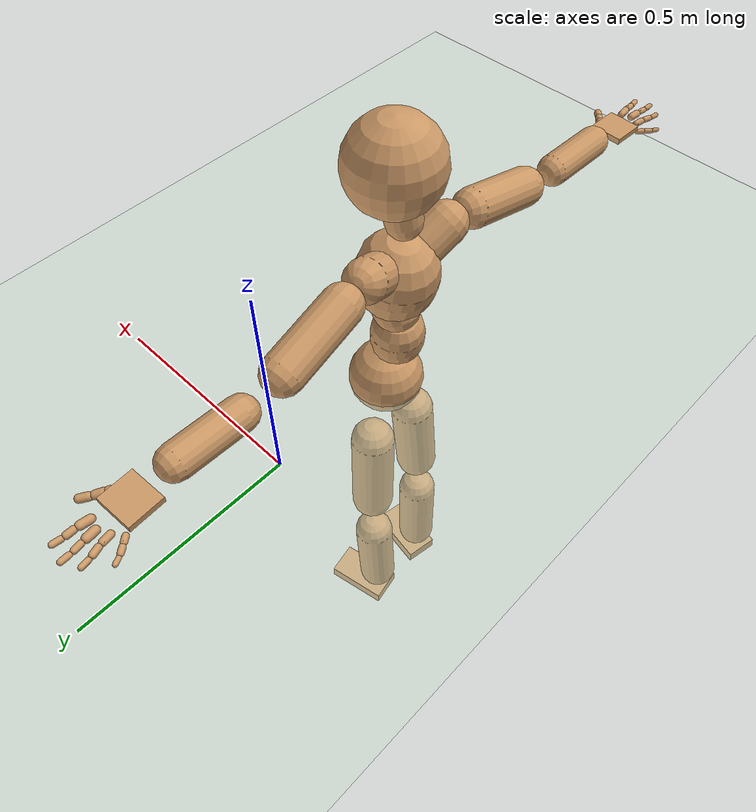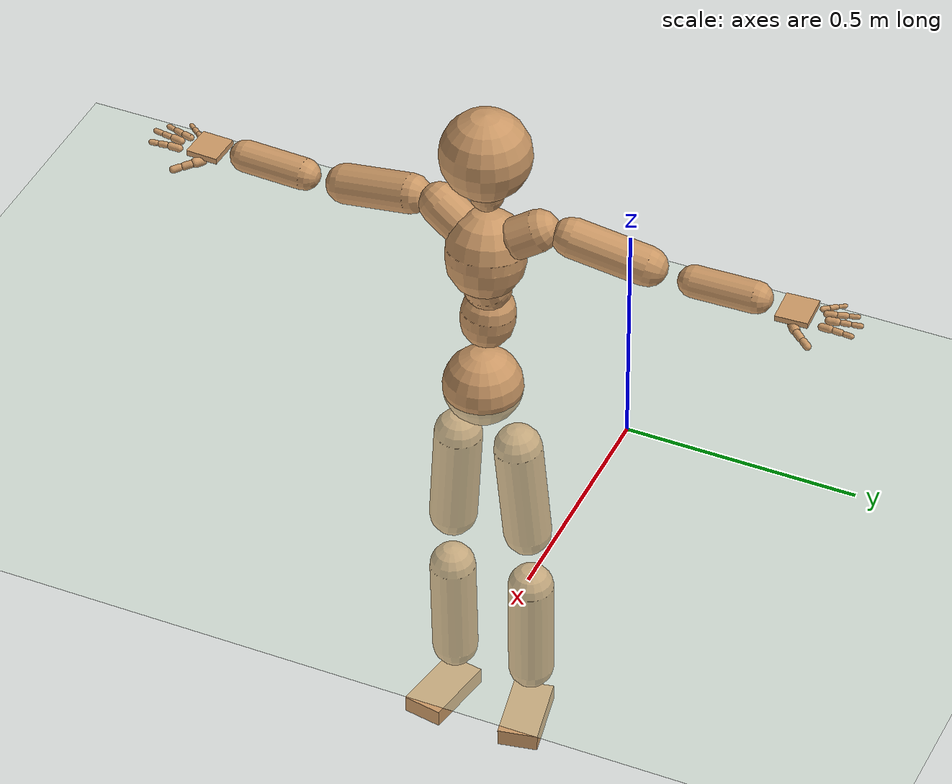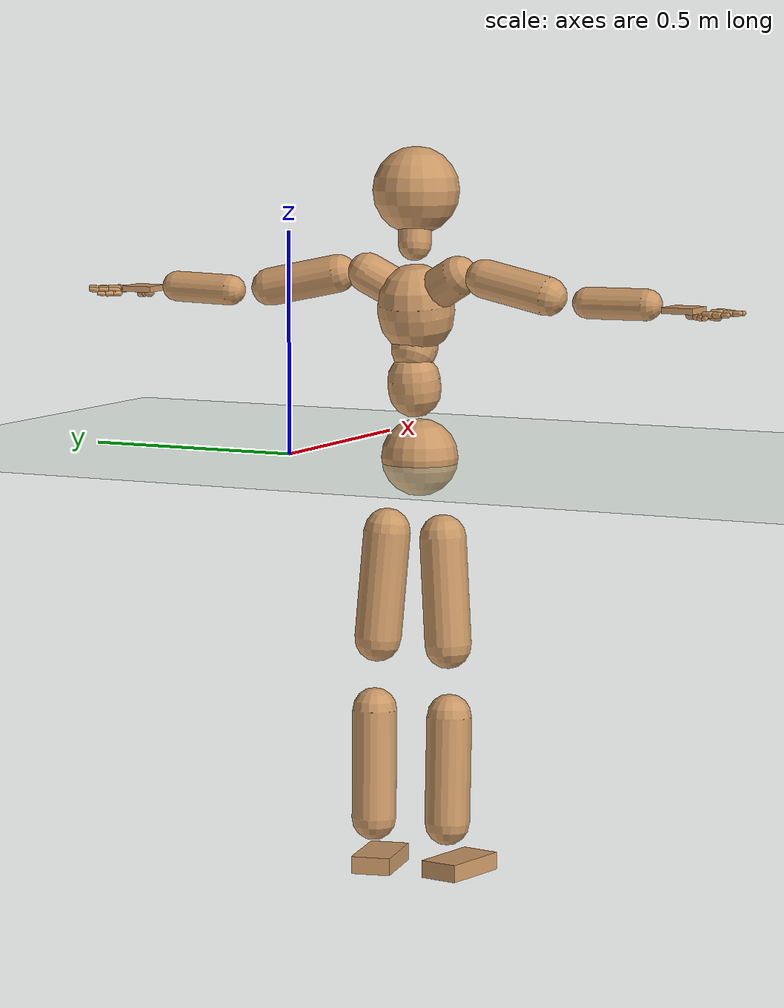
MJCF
<mujoco model="humanoid">
  <compiler coordinate="local" angle="radian"/>
  <default>
    <joint damping="0.0" armature="0.01" stiffness="0.0" limited="true"/>
    <geom conaffinity="1" condim="3" contype="7" margin="0.001" rgba="0.8 0.6 .4 1"/>
  </default>
  <asset>
    <texture type="skybox" builtin="gradient" rgb1=".4 .5 .6" rgb2="0 0 0" width="100" height="100"/>
    <texture builtin="flat" height="1278" mark="cross" markrgb="1 1 1" name="texgeom" random="0.01" rgb1="0.8 0.6 0.4" rgb2="0.8 0.6 0.4" type="cube" width="127"/>
    <texture builtin="checker" height="100" name="texplane" rgb1="0 0 0" rgb2="0.8 0.8 0.8" type="2d" width="100"/>
    <material name="MatPlane" reflectance="0.5" shininess="1" specular="1" texrepeat="60 60" texture="texplane"/>
    <material name="geom" texture="texgeom" texuniform="true"/>
  </asset>
  <worldbody>
    <light cutoff="100" diffuse="1 1 1" dir="-0 0 -1.3" directional="true" exponent="1" pos="0 0 1.3" specular=".1 .1 .1"/>
    <geom conaffinity="1" condim="3" name="floor" pos="0 0 0" rgba="0.8 0.9 0.8 1" size="100 100 .2" type="plane" material="MatPlane"/>
    <body name="Pelvis" pos="0.0003 -0.3237 0.0109">
      <freejoint name="Pelvis"/>
      <geom type="sphere" contype="1" conaffinity="1" density="500" size="0.0856" pos="0.0000 0.0000 0.0000" name="Pelvis"/>
      <body name="L_Hip" pos="-0.0191 0.0634 -0.0867">
        <joint name="L_Hip_x" type="hinge" pos="0 0 0" axis="1 0 0" stiffness="800" damping="80" armature="0.02" range="-180.0000 180.0000"/>
        <joint name="L_Hip_y" type="hinge" pos="0 0 0" axis="0 1 0" stiffness="800" damping="80" armature="0.02" range="-180.0000 180.0000"/>
        <joint name="L_Hip_z" type="hinge" pos="0 0 0" axis="0 0 1" stiffness="800" damping="80" armature="0.02" range="-180.0000 180.0000"/>
        <geom type="capsule" contype="1" conaffinity="1" density="500" fromto="-0.0044 0.0053 -0.0798 -0.0176 0.0214 -0.3190" size="0.0519" name="L_Hip"/>
        <body name="L_Knee" pos="-0.0219 0.0267 -0.3988">
          <joint name="L_Knee_x" type="hinge" pos="0 0 0" axis="1 0 0" stiffness="800" damping="80" armature="0.02" range="-180.0000 180.0000"/>
          <joint name="L_Knee_y" type="hinge" pos="0 0 0" axis="0 1 0" stiffness="800" damping="80" armature="0.02" range="-180.0000 180.0000"/>
          <joint name="L_Knee_z" type="hinge" pos="0 0 0" axis="0 0 1" stiffness="800" damping="80" armature="0.02" range="-180.0000 180.0000"/>
          <geom type="capsule" contype="1" conaffinity="1" density="500" fromto="-0.0034 -0.0011 -0.0808 -0.0136 -0.0043 -0.3233" size="0.0499" name="L_Knee"/>
          <body name="L_Ankle" pos="-0.017 -0.0054 -0.4041">
            <joint name="L_Ankle_x" type="hinge" pos="0 0 0" axis="1 0 0" stiffness="800" damping="80" armature="0.02" range="-180.0000 180.0000"/>
            <joint name="L_Ankle_y" type="hinge" pos="0 0 0" axis="0 1 0" stiffness="800" damping="80" armature="0.02" range="-180.0000 180.0000"/>
            <joint name="L_Ankle_z" type="hinge" pos="0 0 0" axis="0 0 1" stiffness="800" damping="80" armature="0.02" range="-180.0000 180.0000"/>
            <geom type="box" contype="1" conaffinity="1" density="500" pos="0.0529 0.0103 -0.0232" size="0.0823 0.044 0.0194" quat="0.9953 0.0000 0.0000 0.0964" name="L_Ankle"/>
            <body name="L_Toe" pos="0.1057 0.0207 -0.0464">
              <joint name="L_Toe_x" type="hinge" pos="0 0 0" axis="1 0 0" stiffness="500" damping="50" armature="0.02" range="-180.0000 180.0000"/>
              <joint name="L_Toe_y" type="hinge" pos="0 0 0" axis="0 1 0" stiffness="500" damping="50" armature="0.02" range="-180.0000 180.0000"/>
              <joint name="L_Toe_z" type="hinge" pos="0 0 0" axis="0 0 1" stiffness="500" damping="50" armature="0.02" range="-180.0000 180.0000"/>
              <geom type="box" contype="1" conaffinity="1" density="500" pos="0.0000 0.0000 0.0235" size="0.0009 0.0022 0.001" quat="0.9946 0.0000 0.0000 0.1035" name="L_Toe"/>
            </body>
          </body>
        </body>
      </body>
      <body name="R_Hip" pos="-0.0208 -0.0626 -0.0933">
        <joint name="R_Hip_x" type="hinge" pos="0 0 0" axis="1 0 0" stiffness="800" damping="80" armature="0.02" range="-180.0000 180.0000"/>
        <joint name="R_Hip_y" type="hinge" pos="0 0 0" axis="0 1 0" stiffness="800" damping="80" armature="0.02" range="-180.0000 180.0000"/>
        <joint name="R_Hip_z" type="hinge" pos="0 0 0" axis="0 0 1" stiffness="800" damping="80" armature="0.02" range="-180.0000 180.0000"/>
        <geom type="capsule" contype="1" conaffinity="1" density="500" fromto="-0.0032 -0.0060 -0.0789 -0.0127 -0.0239 -0.3156" size="0.0518" name="R_Hip"/>
        <body name="R_Knee" pos="-0.0159 -0.0299 -0.3945">
          <joint name="R_Knee_x" type="hinge" pos="0 0 0" axis="1 0 0" stiffness="800" damping="80" armature="0.02" range="-180.0000 180.0000"/>
          <joint name="R_Knee_y" type="hinge" pos="0 0 0" axis="0 1 0" stiffness="800" damping="80" armature="0.02" range="-180.0000 180.0000"/>
          <joint name="R_Knee_z" type="hinge" pos="0 0 0" axis="0 0 1" stiffness="800" damping="80" armature="0.02" range="-180.0000 180.0000"/>
          <geom type="capsule" contype="1" conaffinity="1" density="500" fromto="-0.0026 0.0002 -0.0791 -0.0104 0.0008 -0.3166" size="0.0499" name="R_Knee"/>
          <body name="R_Ankle" pos="-0.013 0.001 -0.3957">
            <joint name="R_Ankle_x" type="hinge" pos="0 0 0" axis="1 0 0" stiffness="800" damping="80" armature="0.02" range="-180.0000 180.0000"/>
            <joint name="R_Ankle_y" type="hinge" pos="0 0 0" axis="0 1 0" stiffness="800" damping="80" armature="0.02" range="-180.0000 180.0000"/>
            <joint name="R_Ankle_z" type="hinge" pos="0 0 0" axis="0 0 1" stiffness="800" damping="80" armature="0.02" range="-180.0000 180.0000"/>
            <geom type="box" contype="1" conaffinity="1" density="500" pos="0.0497 -0.0084 -0.0251" size="0.0823 0.044 0.0194" quat="0.9965 0.0000 0.0000 -0.0837" name="R_Ankle"/>
            <body name="R_Toe" pos="0.0993 -0.0168 -0.0501">
              <joint name="R_Toe_x" type="hinge" pos="0 0 0" axis="1 0 0" stiffness="500" damping="50" armature="0.02" range="-180.0000 180.0000"/>
              <joint name="R_Toe_y" type="hinge" pos="0 0 0" axis="0 1 0" stiffness="500" damping="50" armature="0.02" range="-180.0000 180.0000"/>
              <joint name="R_Toe_z" type="hinge" pos="0 0 0" axis="0 0 1" stiffness="500" damping="50" armature="0.02" range="-180.0000 180.0000"/>
              <geom type="box" contype="1" conaffinity="1" density="500" pos="0.0000 0.0000 0.0254" size="0.0009 0.0022 0.001" quat="0.9974 0.0000 0.0000 -0.0725" name="R_Toe"/>
            </body>
          </body>
        </body>
      </body>
      <body name="Torso" pos="-0.0247 -0.0046 0.0999">
        <joint name="Torso_x" type="hinge" pos="0 0 0" axis="1 0 0" stiffness="1000" damping="100" armature="0.02" range="-180.0000 180.0000"/>
        <joint name="Torso_y" type="hinge" pos="0 0 0" axis="0 1 0" stiffness="1000" damping="100" armature="0.02" range="-180.0000 180.0000"/>
        <joint name="Torso_z" type="hinge" pos="0 0 0" axis="0 0 1" stiffness="1000" damping="100" armature="0.02" range="-180.0000 180.0000"/>
        <geom type="capsule" contype="1" conaffinity="1" density="500" fromto="-0.0062 0.0039 0.0741 -0.0042 0.0026 0.0494" size="0.0581" name="Torso"/>
        <body name="Spine" pos="-0.0104 0.0065 0.1234">
          <joint name="Spine_x" type="hinge" pos="0 0 0" axis="1 0 0" stiffness="1000" damping="100" armature="0.02" range="-180.0000 180.0000"/>
          <joint name="Spine_y" type="hinge" pos="0 0 0" axis="0 1 0" stiffness="1000" damping="100" armature="0.02" range="-180.0000 180.0000"/>
          <joint name="Spine_z" type="hinge" pos="0 0 0" axis="0 0 1" stiffness="1000" damping="100" armature="0.02" range="-180.0000 180.0000"/>
          <geom type="capsule" contype="1" conaffinity="1" density="500" fromto="0.0132 -0.0017 0.0264 0.0088 -0.0012 0.0176" size="0.0511" name="Spine"/>
          <body name="Chest" pos="0.022 -0.0029 0.044">
            <joint name="Chest_x" type="hinge" pos="0 0 0" axis="1 0 0" stiffness="1000" damping="100" armature="0.02" range="-180.0000 180.0000"/>
            <joint name="Chest_y" type="hinge" pos="0 0 0" axis="0 1 0" stiffness="1000" damping="100" armature="0.02" range="-180.0000 180.0000"/>
            <joint name="Chest_z" type="hinge" pos="0 0 0" axis="0 0 1" stiffness="1000" damping="100" armature="0.02" range="-180.0000 180.0000"/>
            <geom type="capsule" contype="1" conaffinity="1" density="500" fromto="-0.0120 -0.0014 0.0761 -0.0080 -0.0009 0.0507" size="0.0849" name="Chest"/>
            <body name="Neck" pos="-0.0267 -0.005 0.1758">
              <joint name="Neck_x" type="hinge" pos="0 0 0" axis="1 0 0" stiffness="500" damping="50" armature="0.02" range="-180.0000 180.0000"/>
              <joint name="Neck_y" type="hinge" pos="0 0 0" axis="0 1 0" stiffness="500" damping="50" armature="0.02" range="-180.0000 180.0000"/>
              <joint name="Neck_z" type="hinge" pos="0 0 0" axis="0 0 1" stiffness="500" damping="50" armature="0.02" range="-180.0000 180.0000"/>
              <geom type="capsule" contype="1" conaffinity="1" density="500" fromto="0.0049 0.0016 0.0289 0.0196 0.0064 0.1154" size="0.0369" name="Neck"/>
              <body name="Head" pos="0.0245 0.008 0.1443">
                <joint name="Head_x" type="hinge" pos="0 0 0" axis="1 0 0" stiffness="500" damping="50" armature="0.02" range="-180.0000 180.0000"/>
                <joint name="Head_y" type="hinge" pos="0 0 0" axis="0 1 0" stiffness="500" damping="50" armature="0.02" range="-180.0000 180.0000"/>
                <joint name="Head_z" type="hinge" pos="0 0 0" axis="0 0 1" stiffness="500" damping="50" armature="0.02" range="-180.0000 180.0000"/>
                <geom type="sphere" contype="1" conaffinity="1" density="500" size="0.0962" pos="0.0000 0.0000 0.0000" name="Head"/>
              </body>
            </body>
            <body name="L_Thorax" pos="-0.0138 0.0454 0.104">
              <joint name="L_Thorax_x" type="hinge" pos="0 0 0" axis="1 0 0" stiffness="500" damping="50" armature="0.02" range="-180.0000 180.0000"/>
              <joint name="L_Thorax_y" type="hinge" pos="0 0 0" axis="0 1 0" stiffness="500" damping="50" armature="0.02" range="-180.0000 180.0000"/>
              <joint name="L_Thorax_z" type="hinge" pos="0 0 0" axis="0 0 1" stiffness="500" damping="50" armature="0.02" range="-180.0000 180.0000"/>
              <geom type="capsule" contype="1" conaffinity="1" density="500" fromto="-0.0045 0.0152 0.0087 -0.0179 0.0609 0.0348" size="0.0443" name="L_Thorax"/>
              <body name="L_Shoulder" pos="-0.0223 0.0761 0.0434">
                <joint name="L_Shoulder_x" type="hinge" pos="0 0 0" axis="1 0 0" stiffness="500" damping="50" armature="0.02" range="-180.0000 180.0000"/>
                <joint name="L_Shoulder_y" type="hinge" pos="0 0 0" axis="0 1 0" stiffness="500" damping="50" armature="0.02" range="-180.0000 180.0000"/>
                <joint name="L_Shoulder_z" type="hinge" pos="0 0 0" axis="0 0 1" stiffness="500" damping="50" armature="0.02" range="-180.0000 180.0000"/>
                <geom type="capsule" contype="1" conaffinity="1" density="500" fromto="-0.0054 0.0532 -0.0114 -0.0215 0.2128 -0.0456" size="0.042" name="L_Shoulder"/>
                <body name="L_Elbow" pos="-0.0269 0.266 -0.057">
                  <joint name="L_Elbow_x" type="hinge" pos="0 0 0" axis="1 0 0" stiffness="500" damping="50" armature="0.02" range="-720.0000 720.0000"/>
                  <joint name="L_Elbow_y" type="hinge" pos="0 0 0" axis="0 1 0" stiffness="500" damping="50" armature="0.02" range="-720.0000 720.0000"/>
                  <joint name="L_Elbow_z" type="hinge" pos="0 0 0" axis="0 0 1" stiffness="500" damping="50" armature="0.02" range="-720.0000 720.0000"/>
                  <geom type="capsule" contype="1" conaffinity="1" density="500" fromto="0.0002 0.0451 0.0013 0.0007 0.1804 0.0050" size="0.0339" name="L_Elbow"/>
                  <body name="L_Wrist" pos="0.0009 0.2254 0.0063">
                    <joint name="L_Wrist_x" type="hinge" pos="0 0 0" axis="1 0 0" stiffness="300" damping="30" armature="0.02" range="-180.0000 180.0000"/>
                    <joint name="L_Wrist_y" type="hinge" pos="0 0 0" axis="0 1 0" stiffness="300" damping="30" armature="0.02" range="-180.0000 180.0000"/>
                    <joint name="L_Wrist_z" type="hinge" pos="0 0 0" axis="0 0 1" stiffness="300" damping="30" armature="0.02" range="-180.0000 180.0000"/>
                    <geom type="box" contype="1" conaffinity="1" density="500" pos="-0.0022 0.0410 -0.0082" size="0.035 0.039 0.0063" quat="0.7257 0.0000 0.0000 -0.6880" name="L_Wrist"/>
                    <body name="L_Index1" pos="0.0181 0.0962 -0.0145">
                      <joint name="L_Index1_x" type="hinge" pos="0 0 0" axis="1 0 0" stiffness="100" damping="10" armature="0.02" range="-180.0000 180.0000"/>
                      <joint name="L_Index1_y" type="hinge" pos="0 0 0" axis="0 1 0" stiffness="100" damping="10" armature="0.02" range="-180.0000 180.0000"/>
                      <joint name="L_Index1_z" type="hinge" pos="0 0 0" axis="0 0 1" stiffness="100" damping="10" armature="0.02" range="-180.0000 180.0000"/>
                      <geom type="capsule" contype="1" conaffinity="1" density="500" fromto="0.0006 0.0061 0.0005 0.0022 0.0243 0.0019" size="0.0081" name="L_Index1"/>
                      <body name="L_Index2" pos="0.0028 0.0303 0.0023">
                        <joint name="L_Index2_x" type="hinge" pos="0 0 0" axis="1 0 0" stiffness="100" damping="10" armature="0.02" range="-180.0000 180.0000"/>
                        <joint name="L_Index2_y" type="hinge" pos="0 0 0" axis="0 1 0" stiffness="100" damping="10" armature="0.02" range="-180.0000 180.0000"/>
                        <joint name="L_Index2_z" type="hinge" pos="0 0 0" axis="0 0 1" stiffness="100" damping="10" armature="0.02" range="-180.0000 180.0000"/>
                        <geom type="capsule" contype="1" conaffinity="1" density="500" fromto="0.0001 0.0043 -0.0003 0.0005 0.0173 -0.0011" size="0.0068" name="L_Index2"/>
                        <body name="L_Index3" pos="0.0006 0.0216 -0.0014">
                          <joint name="L_Index3_x" type="hinge" pos="0 0 0" axis="1 0 0" stiffness="100" damping="10" armature="0.02" range="-180.0000 180.0000"/>
                          <joint name="L_Index3_y" type="hinge" pos="0 0 0" axis="0 1 0" stiffness="100" damping="10" armature="0.02" range="-180.0000 180.0000"/>
                          <joint name="L_Index3_z" type="hinge" pos="0 0 0" axis="0 0 1" stiffness="100" damping="10" armature="0.02" range="-180.0000 180.0000"/>
                          <geom type="capsule" contype="1" conaffinity="1" density="500" fromto="0.0005 0.0047 0.0001 0.0021 0.0189 0.0005" size="0.0058" name="L_Index3"/>
                        </body>
                      </body>
                    </body>
                    <body name="L_Middle1" pos="-0.0025 0.1028 -0.0126">
                      <joint name="L_Middle1_x" type="hinge" pos="0 0 0" axis="1 0 0" stiffness="100" damping="10" armature="0.02" range="-180.0000 180.0000"/>
                      <joint name="L_Middle1_y" type="hinge" pos="0 0 0" axis="0 1 0" stiffness="100" damping="10" armature="0.02" range="-180.0000 180.0000"/>
                      <joint name="L_Middle1_z" type="hinge" pos="0 0 0" axis="0 0 1" stiffness="100" damping="10" armature="0.02" range="-180.0000 180.0000"/>
                      <geom type="capsule" contype="1" conaffinity="1" density="500" fromto="-0.0008 0.0058 0.0002 -0.0030 0.0230 0.0008" size="0.0082" name="L_Middle1"/>
                      <body name="L_Middle2" pos="-0.0038 0.0288 0.0011">
                        <joint name="L_Middle2_x" type="hinge" pos="0 0 0" axis="1 0 0" stiffness="100" damping="10" armature="0.02" range="-180.0000 180.0000"/>
                        <joint name="L_Middle2_y" type="hinge" pos="0 0 0" axis="0 1 0" stiffness="100" damping="10" armature="0.02" range="-180.0000 180.0000"/>
                        <joint name="L_Middle2_z" type="hinge" pos="0 0 0" axis="0 0 1" stiffness="100" damping="10" armature="0.02" range="-180.0000 180.0000"/>
                        <geom type="capsule" contype="1" conaffinity="1" density="500" fromto="-0.0007 0.0045 -0.0001 -0.0029 0.0180 -0.0003" size="0.0062" name="L_Middle2"/>
                        <body name="L_Middle3" pos="-0.0036 0.0225 -0.0004">
                          <joint name="L_Middle3_x" type="hinge" pos="0 0 0" axis="1 0 0" stiffness="100" damping="10" armature="0.02" range="-180.0000 180.0000"/>
                          <joint name="L_Middle3_y" type="hinge" pos="0 0 0" axis="0 1 0" stiffness="100" damping="10" armature="0.02" range="-180.0000 180.0000"/>
                          <joint name="L_Middle3_z" type="hinge" pos="0 0 0" axis="0 0 1" stiffness="100" damping="10" armature="0.02" range="-180.0000 180.0000"/>
                          <geom type="capsule" contype="1" conaffinity="1" density="500" fromto="-0.0003 0.0049 0.0003 -0.0013 0.0196 0.0013" size="0.0056" name="L_Middle3"/>
                        </body>
                      </body>
                    </body>
                    <body name="L_Pinky1" pos="-0.0377 0.0791 -0.0192">
                      <joint name="L_Pinky1_x" type="hinge" pos="0 0 0" axis="1 0 0" stiffness="100" damping="10" armature="0.02" range="-180.0000 180.0000"/>
                      <joint name="L_Pinky1_y" type="hinge" pos="0 0 0" axis="0 1 0" stiffness="100" damping="10" armature="0.02" range="-180.0000 180.0000"/>
                      <joint name="L_Pinky1_z" type="hinge" pos="0 0 0" axis="0 0 1" stiffness="100" damping="10" armature="0.02" range="-180.0000 180.0000"/>
                      <geom type="capsule" contype="1" conaffinity="1" density="500" fromto="-0.0023 0.0027 -0.0000 -0.0091 0.0109 -0.0002" size="0.0059" name="L_Pinky1"/>
                      <body name="L_Pinky2" pos="-0.0114 0.0137 -0.0002">
                        <joint name="L_Pinky2_x" type="hinge" pos="0 0 0" axis="1 0 0" stiffness="100" damping="10" armature="0.02" range="-180.0000 180.0000"/>
                        <joint name="L_Pinky2_y" type="hinge" pos="0 0 0" axis="0 1 0" stiffness="100" damping="10" armature="0.02" range="-180.0000 180.0000"/>
                        <joint name="L_Pinky2_z" type="hinge" pos="0 0 0" axis="0 0 1" stiffness="100" damping="10" armature="0.02" range="-180.0000 180.0000"/>
                        <geom type="capsule" contype="1" conaffinity="1" density="500" fromto="-0.0022 0.0028 -0.0001 -0.0089 0.0113 -0.0005" size="0.0058" name="L_Pinky2"/>
                        <body name="L_Pinky3" pos="-0.0111 0.0141 -0.0006">
                          <joint name="L_Pinky3_x" type="hinge" pos="0 0 0" axis="1 0 0" stiffness="100" damping="10" armature="0.02" range="-180.0000 180.0000"/>
                          <joint name="L_Pinky3_y" type="hinge" pos="0 0 0" axis="0 1 0" stiffness="100" damping="10" armature="0.02" range="-180.0000 180.0000"/>
                          <joint name="L_Pinky3_z" type="hinge" pos="0 0 0" axis="0 0 1" stiffness="100" damping="10" armature="0.02" range="-180.0000 180.0000"/>
                          <geom type="capsule" contype="1" conaffinity="1" density="500" fromto="-0.0018 0.0032 0.0003 -0.0073 0.0129 0.0011" size="0.0046" name="L_Pinky3"/>
                        </body>
                      </body>
                    </body>
                    <body name="L_Ring1" pos="-0.0231 0.0914 -0.0149">
                      <joint name="L_Ring1_x" type="hinge" pos="0 0 0" axis="1 0 0" stiffness="100" damping="10" armature="0.02" range="-180.0000 180.0000"/>
                      <joint name="L_Ring1_y" type="hinge" pos="0 0 0" axis="0 1 0" stiffness="100" damping="10" armature="0.02" range="-180.0000 180.0000"/>
                      <joint name="L_Ring1_z" type="hinge" pos="0 0 0" axis="0 0 1" stiffness="100" damping="10" armature="0.02" range="-180.0000 180.0000"/>
                      <geom type="capsule" contype="1" conaffinity="1" density="500" fromto="-0.0010 0.0052 0.0003 -0.0040 0.0207 0.0011" size="0.0071" name="L_Ring1"/>
                      <body name="L_Ring2" pos="-0.0051 0.0259 0.0014">
                        <joint name="L_Ring2_x" type="hinge" pos="0 0 0" axis="1 0 0" stiffness="100" damping="10" armature="0.02" range="-180.0000 180.0000"/>
                        <joint name="L_Ring2_y" type="hinge" pos="0 0 0" axis="0 1 0" stiffness="100" damping="10" armature="0.02" range="-180.0000 180.0000"/>
                        <joint name="L_Ring2_z" type="hinge" pos="0 0 0" axis="0 0 1" stiffness="100" damping="10" armature="0.02" range="-180.0000 180.0000"/>
                        <geom type="capsule" contype="1" conaffinity="1" density="500" fromto="-0.0014 0.0043 -0.0002 -0.0054 0.0171 -0.0006" size="0.0066" name="L_Ring2"/>
                        <body name="L_Ring3" pos="-0.0068 0.0214 -0.0008">
                          <joint name="L_Ring3_x" type="hinge" pos="0 0 0" axis="1 0 0" stiffness="100" damping="10" armature="0.02" range="-180.0000 180.0000"/>
                          <joint name="L_Ring3_y" type="hinge" pos="0 0 0" axis="0 1 0" stiffness="100" damping="10" armature="0.02" range="-180.0000 180.0000"/>
                          <joint name="L_Ring3_z" type="hinge" pos="0 0 0" axis="0 0 1" stiffness="100" damping="10" armature="0.02" range="-180.0000 180.0000"/>
                          <geom type="capsule" contype="1" conaffinity="1" density="500" fromto="-0.0010 0.0047 0.0002 -0.0038 0.0187 0.0010" size="0.0053" name="L_Ring3"/>
                        </body>
                      </body>
                    </body>
                    <body name="L_Thumb1" pos="0.0233 0.0403 -0.0207">
                      <joint name="L_Thumb1_x" type="hinge" pos="0 0 0" axis="1 0 0" stiffness="100" damping="10" armature="0.02" range="-180.0000 180.0000"/>
                      <joint name="L_Thumb1_y" type="hinge" pos="0 0 0" axis="0 1 0" stiffness="100" damping="10" armature="0.02" range="-180.0000 180.0000"/>
                      <joint name="L_Thumb1_z" type="hinge" pos="0 0 0" axis="0 0 1" stiffness="100" damping="10" armature="0.02" range="-180.0000 180.0000"/>
                      <geom type="capsule" contype="1" conaffinity="1" density="500" fromto="0.0044 0.0032 0.0001 0.0175 0.0130 0.0003" size="0.0106" name="L_Thumb1"/>
                      <body name="L_Thumb2" pos="0.0219 0.0162 0.0003">
                        <joint name="L_Thumb2_x" type="hinge" pos="0 0 0" axis="1 0 0" stiffness="100" damping="10" armature="0.02" range="-180.0000 180.0000"/>
                        <joint name="L_Thumb2_y" type="hinge" pos="0 0 0" axis="0 1 0" stiffness="100" damping="10" armature="0.02" range="-180.0000 180.0000"/>
                        <joint name="L_Thumb2_z" type="hinge" pos="0 0 0" axis="0 0 1" stiffness="100" damping="10" armature="0.02" range="-180.0000 180.0000"/>
                        <geom type="capsule" contype="1" conaffinity="1" density="500" fromto="0.0027 0.0039 -0.0010 0.0109 0.0155 -0.0042" size="0.0084" name="L_Thumb2"/>
                        <body name="L_Thumb3" pos="0.0136 0.0194 -0.0052">
                          <joint name="L_Thumb3_x" type="hinge" pos="0 0 0" axis="1 0 0" stiffness="100" damping="10" armature="0.02" range="-180.0000 180.0000"/>
                          <joint name="L_Thumb3_y" type="hinge" pos="0 0 0" axis="0 1 0" stiffness="100" damping="10" armature="0.02" range="-180.0000 180.0000"/>
                          <joint name="L_Thumb3_z" type="hinge" pos="0 0 0" axis="0 0 1" stiffness="100" damping="10" armature="0.02" range="-180.0000 180.0000"/>
                          <geom type="capsule" contype="1" conaffinity="1" density="500" fromto="0.0031 0.0043 -0.0006 0.0125 0.0171 -0.0026" size="0.0079" name="L_Thumb3"/>
                        </body>
                      </body>
                    </body>
                  </body>
                </body>
              </body>
            </body>
            <body name="R_Thorax" pos="-0.0195 -0.0474 0.1005">
              <joint name="R_Thorax_x" type="hinge" pos="0 0 0" axis="1 0 0" stiffness="500" damping="50" armature="0.02" range="-180.0000 180.0000"/>
              <joint name="R_Thorax_y" type="hinge" pos="0 0 0" axis="0 1 0" stiffness="500" damping="50" armature="0.02" range="-180.0000 180.0000"/>
              <joint name="R_Thorax_z" type="hinge" pos="0 0 0" axis="0 0 1" stiffness="500" damping="50" armature="0.02" range="-180.0000 180.0000"/>
              <geom type="capsule" contype="1" conaffinity="1" density="500" fromto="-0.0034 -0.0163 0.0092 -0.0134 -0.0652 0.0370" size="0.0453" name="R_Thorax"/>
              <body name="R_Shoulder" pos="-0.0168 -0.0815 0.0462">
                <joint name="R_Shoulder_x" type="hinge" pos="0 0 0" axis="1 0 0" stiffness="500" damping="50" armature="0.02" range="-180.0000 180.0000"/>
                <joint name="R_Shoulder_y" type="hinge" pos="0 0 0" axis="0 1 0" stiffness="500" damping="50" armature="0.02" range="-180.0000 180.0000"/>
                <joint name="R_Shoulder_z" type="hinge" pos="0 0 0" axis="0 0 1" stiffness="500" damping="50" armature="0.02" range="-180.0000 180.0000"/>
                <geom type="capsule" contype="1" conaffinity="1" density="500" fromto="-0.0040 -0.0515 -0.0106 -0.0160 -0.2058 -0.0424" size="0.0423" name="R_Shoulder"/>
                <body name="R_Elbow" pos="-0.0201 -0.2573 -0.0529">
                  <joint name="R_Elbow_x" type="hinge" pos="0 0 0" axis="1 0 0" stiffness="500" damping="50" armature="0.02" range="-720.0000 720.0000"/>
                  <joint name="R_Elbow_y" type="hinge" pos="0 0 0" axis="0 1 0" stiffness="500" damping="50" armature="0.02" range="-720.0000 720.0000"/>
                  <joint name="R_Elbow_z" type="hinge" pos="0 0 0" axis="0 0 1" stiffness="500" damping="50" armature="0.02" range="-720.0000 720.0000"/>
                  <geom type="capsule" contype="1" conaffinity="1" density="500" fromto="-0.0014 -0.0453 0.0005 -0.0056 -0.1813 0.0018" size="0.0341" name="R_Elbow"/>
                  <body name="R_Wrist" pos="-0.007 -0.2266 0.0023">
                    <joint name="R_Wrist_x" type="hinge" pos="0 0 0" axis="1 0 0" stiffness="300" damping="30" armature="0.02" range="-180.0000 180.0000"/>
                    <joint name="R_Wrist_y" type="hinge" pos="0 0 0" axis="0 1 0" stiffness="300" damping="30" armature="0.02" range="-180.0000 180.0000"/>
                    <joint name="R_Wrist_z" type="hinge" pos="0 0 0" axis="0 0 1" stiffness="300" damping="30" armature="0.02" range="-180.0000 180.0000"/>
                    <geom type="box" contype="1" conaffinity="1" density="500" pos="-0.0016 -0.0404 -0.0079" size="0.035 0.0364 0.0065" quat="0.7208 0.0000 0.0000 0.6931" name="R_Wrist"/>
                    <body name="R_Index1" pos="0.0193 -0.0951 -0.0139">
                      <joint name="R_Index1_x" type="hinge" pos="0 0 0" axis="1 0 0" stiffness="100" damping="10" armature="0.02" range="-180.0000 180.0000"/>
                      <joint name="R_Index1_y" type="hinge" pos="0 0 0" axis="0 1 0" stiffness="100" damping="10" armature="0.02" range="-180.0000 180.0000"/>
                      <joint name="R_Index1_z" type="hinge" pos="0 0 0" axis="0 0 1" stiffness="100" damping="10" armature="0.02" range="-180.0000 180.0000"/>
                      <geom type="capsule" contype="1" conaffinity="1" density="500" fromto="0.0006 -0.0061 0.0005 0.0022 -0.0243 0.0019" size="0.0081" name="R_Index1"/>
                      <body name="R_Index2" pos="0.0028 -0.0303 0.0023">
                        <joint name="R_Index2_x" type="hinge" pos="0 0 0" axis="1 0 0" stiffness="100" damping="10" armature="0.02" range="-180.0000 180.0000"/>
                        <joint name="R_Index2_y" type="hinge" pos="0 0 0" axis="0 1 0" stiffness="100" damping="10" armature="0.02" range="-180.0000 180.0000"/>
                        <joint name="R_Index2_z" type="hinge" pos="0 0 0" axis="0 0 1" stiffness="100" damping="10" armature="0.02" range="-180.0000 180.0000"/>
                        <geom type="capsule" contype="1" conaffinity="1" density="500" fromto="0.0001 -0.0043 -0.0003 0.0005 -0.0173 -0.0011" size="0.0068" name="R_Index2"/>
                        <body name="R_Index3" pos="0.0006 -0.0216 -0.0014">
                          <joint name="R_Index3_x" type="hinge" pos="0 0 0" axis="1 0 0" stiffness="100" damping="10" armature="0.02" range="-180.0000 180.0000"/>
                          <joint name="R_Index3_y" type="hinge" pos="0 0 0" axis="0 1 0" stiffness="100" damping="10" armature="0.02" range="-180.0000 180.0000"/>
                          <joint name="R_Index3_z" type="hinge" pos="0 0 0" axis="0 0 1" stiffness="100" damping="10" armature="0.02" range="-180.0000 180.0000"/>
                          <geom type="capsule" contype="1" conaffinity="1" density="500" fromto="0.0005 -0.0039 0.0001 0.0021 -0.0157 0.0005" size="0.0061" name="R_Index3"/>
                        </body>
                      </body>
                    </body>
                    <body name="R_Middle1" pos="-0.0013 -0.1017 -0.0119">
                      <joint name="R_Middle1_x" type="hinge" pos="0 0 0" axis="1 0 0" stiffness="100" damping="10" armature="0.02" range="-180.0000 180.0000"/>
                      <joint name="R_Middle1_y" type="hinge" pos="0 0 0" axis="0 1 0" stiffness="100" damping="10" armature="0.02" range="-180.0000 180.0000"/>
                      <joint name="R_Middle1_z" type="hinge" pos="0 0 0" axis="0 0 1" stiffness="100" damping="10" armature="0.02" range="-180.0000 180.0000"/>
                      <geom type="capsule" contype="1" conaffinity="1" density="500" fromto="-0.0008 -0.0058 0.0002 -0.0030 -0.0230 0.0008" size="0.0082" name="R_Middle1"/>
                      <body name="R_Middle2" pos="-0.0038 -0.0288 0.0011">
                        <joint name="R_Middle2_x" type="hinge" pos="0 0 0" axis="1 0 0" stiffness="100" damping="10" armature="0.02" range="-180.0000 180.0000"/>
                        <joint name="R_Middle2_y" type="hinge" pos="0 0 0" axis="0 1 0" stiffness="100" damping="10" armature="0.02" range="-180.0000 180.0000"/>
                        <joint name="R_Middle2_z" type="hinge" pos="0 0 0" axis="0 0 1" stiffness="100" damping="10" armature="0.02" range="-180.0000 180.0000"/>
                        <geom type="capsule" contype="1" conaffinity="1" density="500" fromto="-0.0007 -0.0045 -0.0001 -0.0029 -0.0180 -0.0003" size="0.0062" name="R_Middle2"/>
                        <body name="R_Middle3" pos="-0.0036 -0.0225 -0.0004">
                          <joint name="R_Middle3_x" type="hinge" pos="0 0 0" axis="1 0 0" stiffness="100" damping="10" armature="0.02" range="-180.0000 180.0000"/>
                          <joint name="R_Middle3_y" type="hinge" pos="0 0 0" axis="0 1 0" stiffness="100" damping="10" armature="0.02" range="-180.0000 180.0000"/>
                          <joint name="R_Middle3_z" type="hinge" pos="0 0 0" axis="0 0 1" stiffness="100" damping="10" armature="0.02" range="-180.0000 180.0000"/>
                          <geom type="capsule" contype="1" conaffinity="1" density="500" fromto="-0.0003 -0.0041 0.0003 -0.0013 -0.0164 0.0013" size="0.0058" name="R_Middle3"/>
                        </body>
                      </body>
                    </body>
                    <body name="R_Pinky1" pos="-0.0365 -0.0779 -0.0185">
                      <joint name="R_Pinky1_x" type="hinge" pos="0 0 0" axis="1 0 0" stiffness="100" damping="10" armature="0.02" range="-180.0000 180.0000"/>
                      <joint name="R_Pinky1_y" type="hinge" pos="0 0 0" axis="0 1 0" stiffness="100" damping="10" armature="0.02" range="-180.0000 180.0000"/>
                      <joint name="R_Pinky1_z" type="hinge" pos="0 0 0" axis="0 0 1" stiffness="100" damping="10" armature="0.02" range="-180.0000 180.0000"/>
                      <geom type="capsule" contype="1" conaffinity="1" density="500" fromto="-0.0023 -0.0027 -0.0000 -0.0091 -0.0109 -0.0002" size="0.0059" name="R_Pinky1"/>
                      <body name="R_Pinky2" pos="-0.0114 -0.0137 -0.0002">
                        <joint name="R_Pinky2_x" type="hinge" pos="0 0 0" axis="1 0 0" stiffness="100" damping="10" armature="0.02" range="-180.0000 180.0000"/>
                        <joint name="R_Pinky2_y" type="hinge" pos="0 0 0" axis="0 1 0" stiffness="100" damping="10" armature="0.02" range="-180.0000 180.0000"/>
                        <joint name="R_Pinky2_z" type="hinge" pos="0 0 0" axis="0 0 1" stiffness="100" damping="10" armature="0.02" range="-180.0000 180.0000"/>
                        <geom type="capsule" contype="1" conaffinity="1" density="500" fromto="-0.0022 -0.0028 -0.0001 -0.0089 -0.0113 -0.0005" size="0.0058" name="R_Pinky2"/>
                        <body name="R_Pinky3" pos="-0.0111 -0.0141 -0.0006">
                          <joint name="R_Pinky3_x" type="hinge" pos="0 0 0" axis="1 0 0" stiffness="100" damping="10" armature="0.02" range="-180.0000 180.0000"/>
                          <joint name="R_Pinky3_y" type="hinge" pos="0 0 0" axis="0 1 0" stiffness="100" damping="10" armature="0.02" range="-180.0000 180.0000"/>
                          <joint name="R_Pinky3_z" type="hinge" pos="0 0 0" axis="0 0 1" stiffness="100" damping="10" armature="0.02" range="-180.0000 180.0000"/>
                          <geom type="capsule" contype="1" conaffinity="1" density="500" fromto="-0.0018 -0.0024 0.0003 -0.0073 -0.0097 0.0011" size="0.0049" name="R_Pinky3"/>
                        </body>
                      </body>
                    </body>
                    <body name="R_Ring1" pos="-0.0219 -0.0903 -0.0143">
                      <joint name="R_Ring1_x" type="hinge" pos="0 0 0" axis="1 0 0" stiffness="100" damping="10" armature="0.02" range="-180.0000 180.0000"/>
                      <joint name="R_Ring1_y" type="hinge" pos="0 0 0" axis="0 1 0" stiffness="100" damping="10" armature="0.02" range="-180.0000 180.0000"/>
                      <joint name="R_Ring1_z" type="hinge" pos="0 0 0" axis="0 0 1" stiffness="100" damping="10" armature="0.02" range="-180.0000 180.0000"/>
                      <geom type="capsule" contype="1" conaffinity="1" density="500" fromto="-0.0010 -0.0052 0.0003 -0.0041 -0.0207 0.0011" size="0.0071" name="R_Ring1"/>
                      <body name="R_Ring2" pos="-0.0051 -0.0259 0.0014">
                        <joint name="R_Ring2_x" type="hinge" pos="0 0 0" axis="1 0 0" stiffness="100" damping="10" armature="0.02" range="-180.0000 180.0000"/>
                        <joint name="R_Ring2_y" type="hinge" pos="0 0 0" axis="0 1 0" stiffness="100" damping="10" armature="0.02" range="-180.0000 180.0000"/>
                        <joint name="R_Ring2_z" type="hinge" pos="0 0 0" axis="0 0 1" stiffness="100" damping="10" armature="0.02" range="-180.0000 180.0000"/>
                        <geom type="capsule" contype="1" conaffinity="1" density="500" fromto="-0.0014 -0.0043 -0.0002 -0.0054 -0.0171 -0.0006" size="0.0066" name="R_Ring2"/>
                        <body name="R_Ring3" pos="-0.0068 -0.0214 -0.0008">
                          <joint name="R_Ring3_x" type="hinge" pos="0 0 0" axis="1 0 0" stiffness="100" damping="10" armature="0.02" range="-180.0000 180.0000"/>
                          <joint name="R_Ring3_y" type="hinge" pos="0 0 0" axis="0 1 0" stiffness="100" damping="10" armature="0.02" range="-180.0000 180.0000"/>
                          <joint name="R_Ring3_z" type="hinge" pos="0 0 0" axis="0 0 1" stiffness="100" damping="10" armature="0.02" range="-180.0000 180.0000"/>
                          <geom type="capsule" contype="1" conaffinity="1" density="500" fromto="-0.0010 -0.0039 0.0002 -0.0038 -0.0155 0.0010" size="0.0055" name="R_Ring3"/>
                        </body>
                      </body>
                    </body>
                    <body name="R_Thumb1" pos="0.0245 -0.0392 -0.0201">
                      <joint name="R_Thumb1_x" type="hinge" pos="0 0 0" axis="1 0 0" stiffness="100" damping="10" armature="0.02" range="-180.0000 180.0000"/>
                      <joint name="R_Thumb1_y" type="hinge" pos="0 0 0" axis="0 1 0" stiffness="100" damping="10" armature="0.02" range="-180.0000 180.0000"/>
                      <joint name="R_Thumb1_z" type="hinge" pos="0 0 0" axis="0 0 1" stiffness="100" damping="10" armature="0.02" range="-180.0000 180.0000"/>
                      <geom type="capsule" contype="1" conaffinity="1" density="500" fromto="0.0044 -0.0032 0.0001 0.0175 -0.0130 0.0003" size="0.0106" name="R_Thumb1"/>
                      <body name="R_Thumb2" pos="0.0219 -0.0162 0.0003">
                        <joint name="R_Thumb2_x" type="hinge" pos="0 0 0" axis="1 0 0" stiffness="100" damping="10" armature="0.02" range="-180.0000 180.0000"/>
                        <joint name="R_Thumb2_y" type="hinge" pos="0 0 0" axis="0 1 0" stiffness="100" damping="10" armature="0.02" range="-180.0000 180.0000"/>
                        <joint name="R_Thumb2_z" type="hinge" pos="0 0 0" axis="0 0 1" stiffness="100" damping="10" armature="0.02" range="-180.0000 180.0000"/>
                        <geom type="capsule" contype="1" conaffinity="1" density="500" fromto="0.0027 -0.0039 -0.0010 0.0109 -0.0155 -0.0042" size="0.0084" name="R_Thumb2"/>
                        <body name="R_Thumb3" pos="0.0136 -0.0194 -0.0052">
                          <joint name="R_Thumb3_x" type="hinge" pos="0 0 0" axis="1 0 0" stiffness="100" damping="10" armature="0.02" range="-180.0000 180.0000"/>
                          <joint name="R_Thumb3_y" type="hinge" pos="0 0 0" axis="0 1 0" stiffness="100" damping="10" armature="0.02" range="-180.0000 180.0000"/>
                          <joint name="R_Thumb3_z" type="hinge" pos="0 0 0" axis="0 0 1" stiffness="100" damping="10" armature="0.02" range="-180.0000 180.0000"/>
                          <geom type="capsule" contype="1" conaffinity="1" density="500" fromto="0.0031 -0.0035 -0.0006 0.0125 -0.0139 -0.0026" size="0.0081" name="R_Thumb3"/>
                        </body>
                      </body>
                    </body>
                  </body>
                </body>
              </body>
            </body>
          </body>
        </body>
      </body>
    </body>
  </worldbody>
  <actuator>
    <motor name="L_Hip_x" joint="L_Hip_x" gear="500"/>
    <motor name="L_Hip_y" joint="L_Hip_y" gear="500"/>
    <motor name="L_Hip_z" joint="L_Hip_z" gear="500"/>
    <motor name="L_Knee_x" joint="L_Knee_x" gear="500"/>
    <motor name="L_Knee_y" joint="L_Knee_y" gear="500"/>
    <motor name="L_Knee_z" joint="L_Knee_z" gear="500"/>
    <motor name="L_Ankle_x" joint="L_Ankle_x" gear="500"/>
    <motor name="L_Ankle_y" joint="L_Ankle_y" gear="500"/>
    <motor name="L_Ankle_z" joint="L_Ankle_z" gear="500"/>
    <motor name="L_Toe_x" joint="L_Toe_x" gear="500"/>
    <motor name="L_Toe_y" joint="L_Toe_y" gear="500"/>
    <motor name="L_Toe_z" joint="L_Toe_z" gear="500"/>
    <motor name="R_Hip_x" joint="R_Hip_x" gear="500"/>
    <motor name="R_Hip_y" joint="R_Hip_y" gear="500"/>
    <motor name="R_Hip_z" joint="R_Hip_z" gear="500"/>
    <motor name="R_Knee_x" joint="R_Knee_x" gear="500"/>
    <motor name="R_Knee_y" joint="R_Knee_y" gear="500"/>
    <motor name="R_Knee_z" joint="R_Knee_z" gear="500"/>
    <motor name="R_Ankle_x" joint="R_Ankle_x" gear="500"/>
    <motor name="R_Ankle_y" joint="R_Ankle_y" gear="500"/>
    <motor name="R_Ankle_z" joint="R_Ankle_z" gear="500"/>
    <motor name="R_Toe_x" joint="R_Toe_x" gear="500"/>
    <motor name="R_Toe_y" joint="R_Toe_y" gear="500"/>
    <motor name="R_Toe_z" joint="R_Toe_z" gear="500"/>
    <motor name="Torso_x" joint="Torso_x" gear="500"/>
    <motor name="Torso_y" joint="Torso_y" gear="500"/>
    <motor name="Torso_z" joint="Torso_z" gear="500"/>
    <motor name="Spine_x" joint="Spine_x" gear="500"/>
    <motor name="Spine_y" joint="Spine_y" gear="500"/>
    <motor name="Spine_z" joint="Spine_z" gear="500"/>
    <motor name="Chest_x" joint="Chest_x" gear="500"/>
    <motor name="Chest_y" joint="Chest_y" gear="500"/>
    <motor name="Chest_z" joint="Chest_z" gear="500"/>
    <motor name="Neck_x" joint="Neck_x" gear="500"/>
    <motor name="Neck_y" joint="Neck_y" gear="500"/>
    <motor name="Neck_z" joint="Neck_z" gear="500"/>
    <motor name="Head_x" joint="Head_x" gear="500"/>
    <motor name="Head_y" joint="Head_y" gear="500"/>
    <motor name="Head_z" joint="Head_z" gear="500"/>
    <motor name="L_Thorax_x" joint="L_Thorax_x" gear="500"/>
    <motor name="L_Thorax_y" joint="L_Thorax_y" gear="500"/>
    <motor name="L_Thorax_z" joint="L_Thorax_z" gear="500"/>
    <motor name="L_Shoulder_x" joint="L_Shoulder_x" gear="500"/>
    <motor name="L_Shoulder_y" joint="L_Shoulder_y" gear="500"/>
    <motor name="L_Shoulder_z" joint="L_Shoulder_z" gear="500"/>
    <motor name="L_Elbow_x" joint="L_Elbow_x" gear="500"/>
    <motor name="L_Elbow_y" joint="L_Elbow_y" gear="500"/>
    <motor name="L_Elbow_z" joint="L_Elbow_z" gear="500"/>
    <motor name="L_Wrist_x" joint="L_Wrist_x" gear="500"/>
    <motor name="L_Wrist_y" joint="L_Wrist_y" gear="500"/>
    <motor name="L_Wrist_z" joint="L_Wrist_z" gear="500"/>
    <motor name="L_Index1_x" joint="L_Index1_x" gear="500"/>
    <motor name="L_Index1_y" joint="L_Index1_y" gear="500"/>
    <motor name="L_Index1_z" joint="L_Index1_z" gear="500"/>
    <motor name="L_Index2_x" joint="L_Index2_x" gear="500"/>
    <motor name="L_Index2_y" joint="L_Index2_y" gear="500"/>
    <motor name="L_Index2_z" joint="L_Index2_z" gear="500"/>
    <motor name="L_Index3_x" joint="L_Index3_x" gear="500"/>
    <motor name="L_Index3_y" joint="L_Index3_y" gear="500"/>
    <motor name="L_Index3_z" joint="L_Index3_z" gear="500"/>
    <motor name="L_Middle1_x" joint="L_Middle1_x" gear="500"/>
    <motor name="L_Middle1_y" joint="L_Middle1_y" gear="500"/>
    <motor name="L_Middle1_z" joint="L_Middle1_z" gear="500"/>
    <motor name="L_Middle2_x" joint="L_Middle2_x" gear="500"/>
    <motor name="L_Middle2_y" joint="L_Middle2_y" gear="500"/>
    <motor name="L_Middle2_z" joint="L_Middle2_z" gear="500"/>
    <motor name="L_Middle3_x" joint="L_Middle3_x" gear="500"/>
    <motor name="L_Middle3_y" joint="L_Middle3_y" gear="500"/>
    <motor name="L_Middle3_z" joint="L_Middle3_z" gear="500"/>
    <motor name="L_Pinky1_x" joint="L_Pinky1_x" gear="500"/>
    <motor name="L_Pinky1_y" joint="L_Pinky1_y" gear="500"/>
    <motor name="L_Pinky1_z" joint="L_Pinky1_z" gear="500"/>
    <motor name="L_Pinky2_x" joint="L_Pinky2_x" gear="500"/>
    <motor name="L_Pinky2_y" joint="L_Pinky2_y" gear="500"/>
    <motor name="L_Pinky2_z" joint="L_Pinky2_z" gear="500"/>
    <motor name="L_Pinky3_x" joint="L_Pinky3_x" gear="500"/>
    <motor name="L_Pinky3_y" joint="L_Pinky3_y" gear="500"/>
    <motor name="L_Pinky3_z" joint="L_Pinky3_z" gear="500"/>
    <motor name="L_Ring1_x" joint="L_Ring1_x" gear="500"/>
    <motor name="L_Ring1_y" joint="L_Ring1_y" gear="500"/>
    <motor name="L_Ring1_z" joint="L_Ring1_z" gear="500"/>
    <motor name="L_Ring2_x" joint="L_Ring2_x" gear="500"/>
    <motor name="L_Ring2_y" joint="L_Ring2_y" gear="500"/>
    <motor name="L_Ring2_z" joint="L_Ring2_z" gear="500"/>
    <motor name="L_Ring3_x" joint="L_Ring3_x" gear="500"/>
    <motor name="L_Ring3_y" joint="L_Ring3_y" gear="500"/>
    <motor name="L_Ring3_z" joint="L_Ring3_z" gear="500"/>
    <motor name="L_Thumb1_x" joint="L_Thumb1_x" gear="500"/>
    <motor name="L_Thumb1_y" joint="L_Thumb1_y" gear="500"/>
    <motor name="L_Thumb1_z" joint="L_Thumb1_z" gear="500"/>
    <motor name="L_Thumb2_x" joint="L_Thumb2_x" gear="500"/>
    <motor name="L_Thumb2_y" joint="L_Thumb2_y" gear="500"/>
    <motor name="L_Thumb2_z" joint="L_Thumb2_z" gear="500"/>
    <motor name="L_Thumb3_x" joint="L_Thumb3_x" gear="500"/>
    <motor name="L_Thumb3_y" joint="L_Thumb3_y" gear="500"/>
    <motor name="L_Thumb3_z" joint="L_Thumb3_z" gear="500"/>
    <motor name="R_Thorax_x" joint="R_Thorax_x" gear="500"/>
    <motor name="R_Thorax_y" joint="R_Thorax_y" gear="500"/>
    <motor name="R_Thorax_z" joint="R_Thorax_z" gear="500"/>
    <motor name="R_Shoulder_x" joint="R_Shoulder_x" gear="500"/>
    <motor name="R_Shoulder_y" joint="R_Shoulder_y" gear="500"/>
    <motor name="R_Shoulder_z" joint="R_Shoulder_z" gear="500"/>
    <motor name="R_Elbow_x" joint="R_Elbow_x" gear="500"/>
    <motor name="R_Elbow_y" joint="R_Elbow_y" gear="500"/>
    <motor name="R_Elbow_z" joint="R_Elbow_z" gear="500"/>
    <motor name="R_Wrist_x" joint="R_Wrist_x" gear="500"/>
    <motor name="R_Wrist_y" joint="R_Wrist_y" gear="500"/>
    <motor name="R_Wrist_z" joint="R_Wrist_z" gear="500"/>
    <motor name="R_Index1_x" joint="R_Index1_x" gear="500"/>
    <motor name="R_Index1_y" joint="R_Index1_y" gear="500"/>
    <motor name="R_Index1_z" joint="R_Index1_z" gear="500"/>
    <motor name="R_Index2_x" joint="R_Index2_x" gear="500"/>
    <motor name="R_Index2_y" joint="R_Index2_y" gear="500"/>
    <motor name="R_Index2_z" joint="R_Index2_z" gear="500"/>
    <motor name="R_Index3_x" joint="R_Index3_x" gear="500"/>
    <motor name="R_Index3_y" joint="R_Index3_y" gear="500"/>
    <motor name="R_Index3_z" joint="R_Index3_z" gear="500"/>
    <motor name="R_Middle1_x" joint="R_Middle1_x" gear="500"/>
    <motor name="R_Middle1_y" joint="R_Middle1_y" gear="500"/>
    <motor name="R_Middle1_z" joint="R_Middle1_z" gear="500"/>
    <motor name="R_Middle2_x" joint="R_Middle2_x" gear="500"/>
    <motor name="R_Middle2_y" joint="R_Middle2_y" gear="500"/>
    <motor name="R_Middle2_z" joint="R_Middle2_z" gear="500"/>
    <motor name="R_Middle3_x" joint="R_Middle3_x" gear="500"/>
    <motor name="R_Middle3_y" joint="R_Middle3_y" gear="500"/>
    <motor name="R_Middle3_z" joint="R_Middle3_z" gear="500"/>
    <motor name="R_Pinky1_x" joint="R_Pinky1_x" gear="500"/>
    <motor name="R_Pinky1_y" joint="R_Pinky1_y" gear="500"/>
    <motor name="R_Pinky1_z" joint="R_Pinky1_z" gear="500"/>
    <motor name="R_Pinky2_x" joint="R_Pinky2_x" gear="500"/>
    <motor name="R_Pinky2_y" joint="R_Pinky2_y" gear="500"/>
    <motor name="R_Pinky2_z" joint="R_Pinky2_z" gear="500"/>
    <motor name="R_Pinky3_x" joint="R_Pinky3_x" gear="500"/>
    <motor name="R_Pinky3_y" joint="R_Pinky3_y" gear="500"/>
    <motor name="R_Pinky3_z" joint="R_Pinky3_z" gear="500"/>
    <motor name="R_Ring1_x" joint="R_Ring1_x" gear="500"/>
    <motor name="R_Ring1_y" joint="R_Ring1_y" gear="500"/>
    <motor name="R_Ring1_z" joint="R_Ring1_z" gear="500"/>
    <motor name="R_Ring2_x" joint="R_Ring2_x" gear="500"/>
    <motor name="R_Ring2_y" joint="R_Ring2_y" gear="500"/>
    <motor name="R_Ring2_z" joint="R_Ring2_z" gear="500"/>
    <motor name="R_Ring3_x" joint="R_Ring3_x" gear="500"/>
    <motor name="R_Ring3_y" joint="R_Ring3_y" gear="500"/>
    <motor name="R_Ring3_z" joint="R_Ring3_z" gear="500"/>
    <motor name="R_Thumb1_x" joint="R_Thumb1_x" gear="500"/>
    <motor name="R_Thumb1_y" joint="R_Thumb1_y" gear="500"/>
    <motor name="R_Thumb1_z" joint="R_Thumb1_z" gear="500"/>
    <motor name="R_Thumb2_x" joint="R_Thumb2_x" gear="500"/>
    <motor name="R_Thumb2_y" joint="R_Thumb2_y" gear="500"/>
    <motor name="R_Thumb2_z" joint="R_Thumb2_z" gear="500"/>
    <motor name="R_Thumb3_x" joint="R_Thumb3_x" gear="500"/>
    <motor name="R_Thumb3_y" joint="R_Thumb3_y" gear="500"/>
    <motor name="R_Thumb3_z" joint="R_Thumb3_z" gear="500"/>
  </actuator>
  <contact>
    <exclude body1="Torso" body2="Chest"/>
    <exclude body1="Head" body2="Chest"/>
    <exclude body1="R_Knee" body2="R_Toe"/>
    <exclude body1="R_Knee" body2="L_Ankle"/>
    <exclude body1="R_Knee" body2="L_Toe"/>
    <exclude body1="L_Knee" body2="L_Toe"/>
    <exclude body1="L_Knee" body2="R_Ankle"/>
    <exclude body1="L_Knee" body2="R_Toe"/>
    <exclude body1="L_Shoulder" body2="Chest"/>
    <exclude body1="R_Shoulder" body2="Chest"/>
  </contact>
  <sensor/>
  <size njmax="700" nconmax="700"/>
</mujoco>
